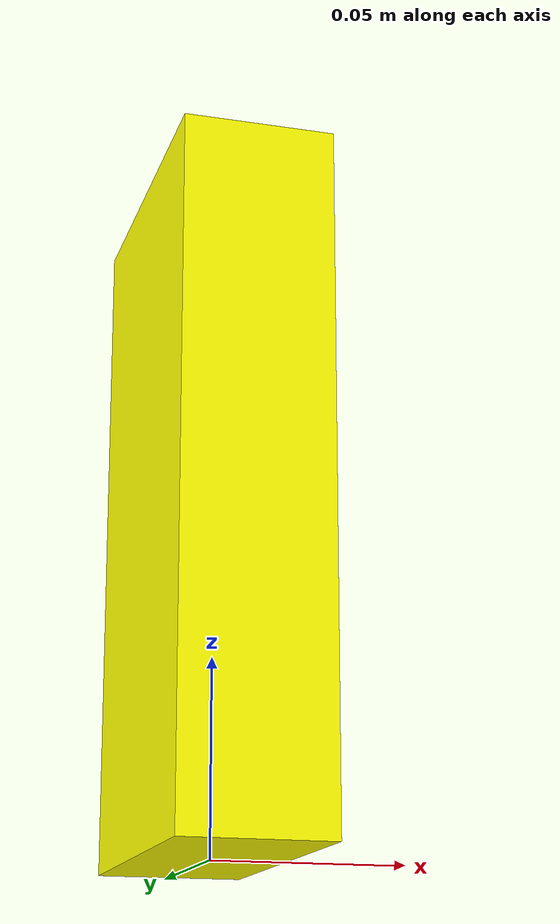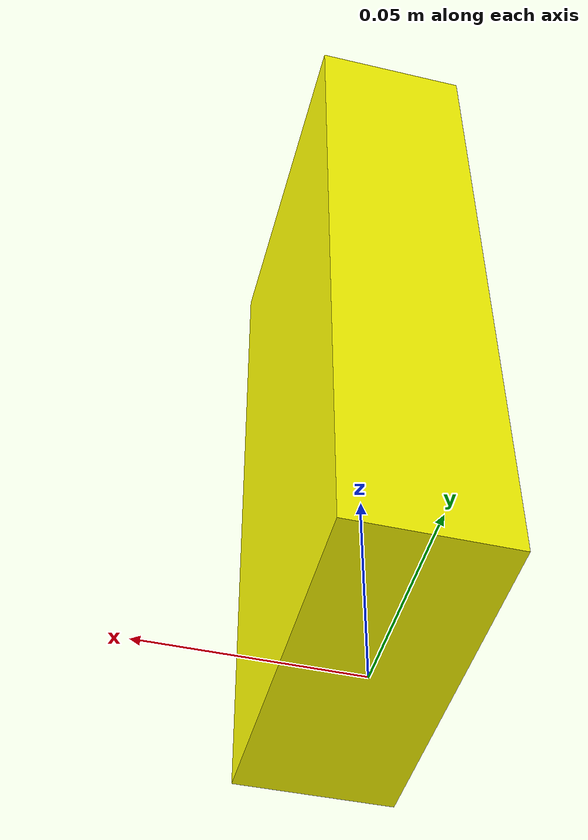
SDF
<?xml version="1.0"?>
<sdf version='1.6'>
<model name="sugar_box">
  <link name="base_link_sugar">
    <inertial>
      <pose frame=''>0 0 0.0875 0 0 0</pose>
      <mass>0.514</mass>
        <inertia>
          <ixx>0.00165105366667</ixx>
          <ixy>0</ixy>
          <ixz>0</ixz>
          <iyy>0.00137362216667</iyy>
          <iyz>0</iyz>
          <izz>0.000401134166667</izz>
        </inertia>
    </inertial>
    <visual name='base_link_sugar'>
      <pose frame=''>0 0 0.0875 0 0 0</pose>
      <geometry>
        <box>
          <size>0.038 0.089 0.175</size>
        </box>
      </geometry>
      <material>
        <diffuse>1.0 1.0 0 1.0</diffuse>
      </material>
    </visual>

    <collision name='sugar_box_collision'>
      <pose>0 0 0.0875 0 0 0</pose>
      <geometry>
        <box>
          <size>0.037 0.088 0.174</size>
        </box>
      </geometry>
      <material>
        <diffuse>0 1 0 1.0</diffuse>
      </material>
    </collision>

    <collision name='point_collision1'>
      <pose>0.019 0.0445 0 0 0 0</pose>
      <geometry>
        <sphere><radius>1e-7</radius></sphere>
      </geometry>
    </collision>

    <collision name='point_collision2'>
      <pose>0.019 -0.0445 0 0 0 0</pose>
      <geometry>
        <sphere><radius>1e-7</radius></sphere>
      </geometry>
    </collision>

    <collision name='point_collision3'>
      <pose>-0.019 0.0445 0 0 0 0</pose>
      <geometry>
        <sphere><radius>1e-7</radius></sphere>
      </geometry>
    </collision>

    <collision name='point_collision4'>
      <pose>-0.019 -0.0445 0 0 0 0</pose>
      <geometry>
        <sphere><radius>1e-7</radius></sphere>
      </geometry>
    </collision>

    <collision name='point_collision5'>
      <pose>0.019 0.0445 0.175 0 0 0</pose>
      <geometry>
        <sphere><radius>1e-7</radius></sphere>
      </geometry>
    </collision>

    <collision name='point_collision6'>
      <pose>0.019 -0.0445 0.175 0 0 0</pose>
      <geometry>
        <sphere><radius>1e-7</radius></sphere>
      </geometry>
    </collision>

    <collision name='point_collision7'>
      <pose>-0.019 0.0445 0.175 0 0 0</pose>
      <geometry>
        <sphere><radius>1e-7</radius></sphere>
      </geometry>
    </collision>

    <collision name='point_collision8'>
      <pose>-0.019 -0.0445 0.175 0 0 0</pose>
      <geometry>
        <sphere><radius>1e-7</radius></sphere>
      </geometry>
    </collision>

   </link>
</model>
</sdf>
